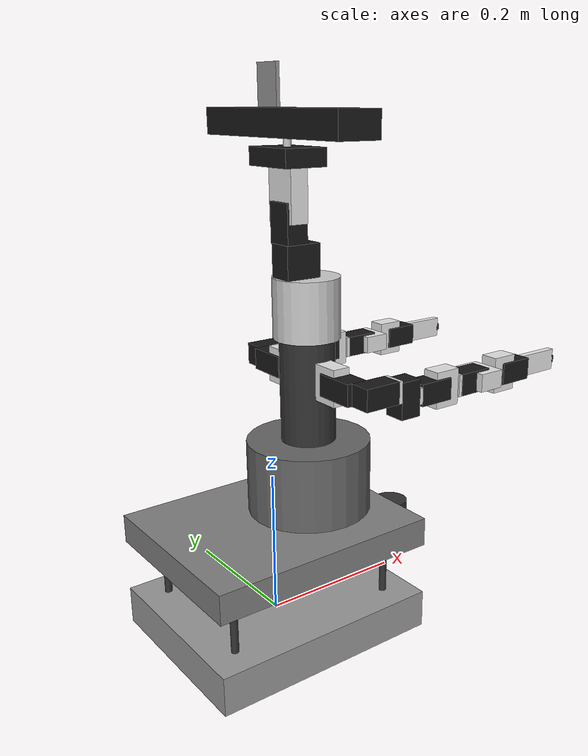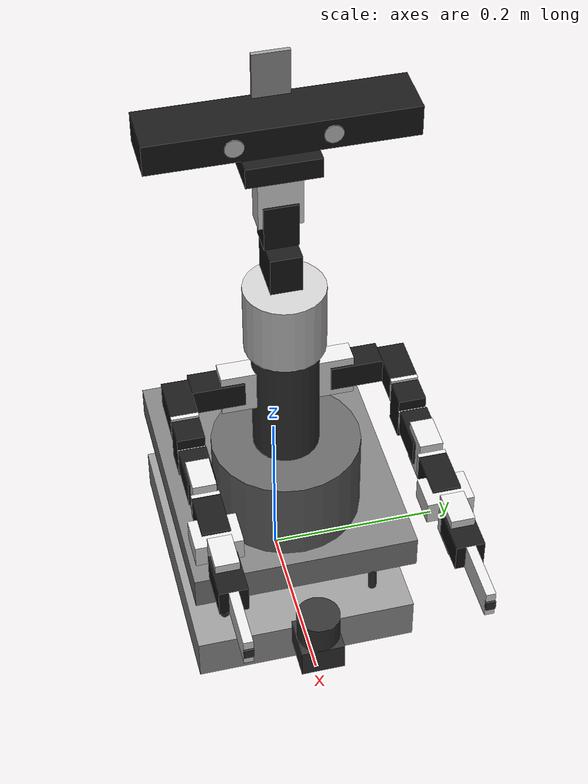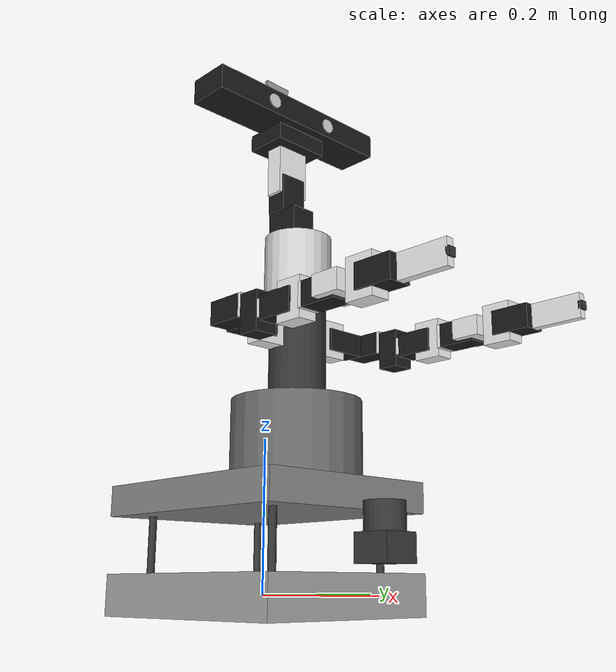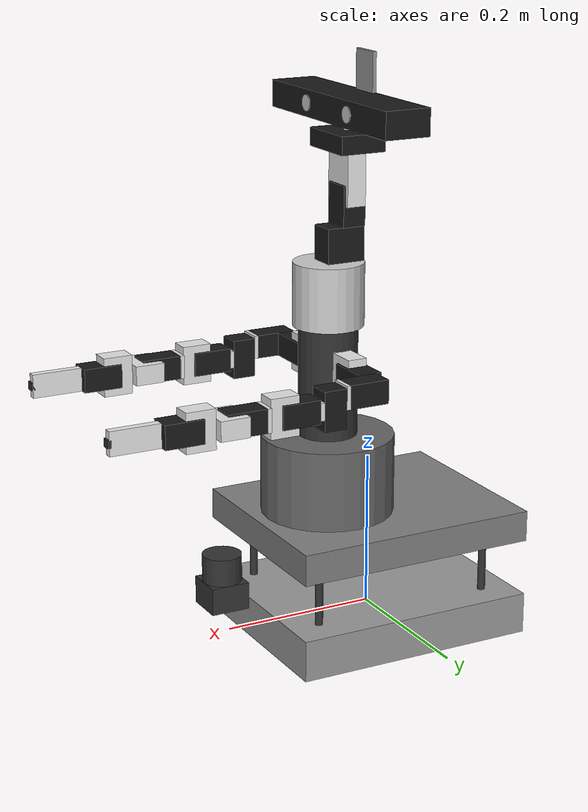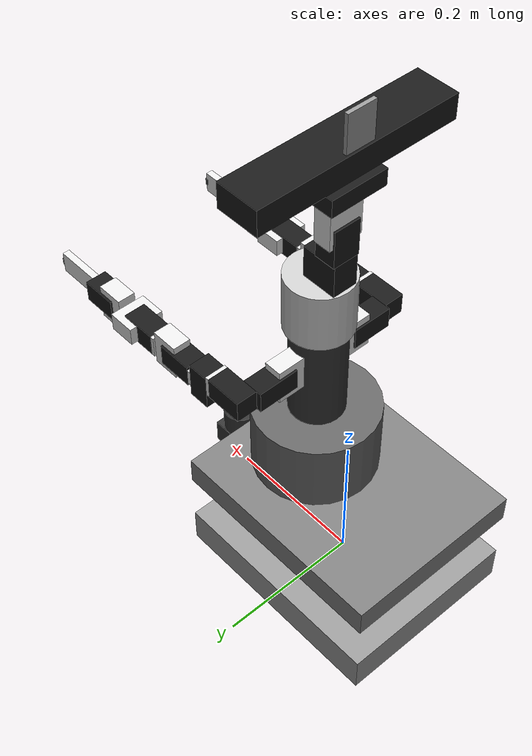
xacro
<?xml version="1.0"?>

<!-- XML namespaces -->
<robot xmlns:sensor="http://playerstage.sourceforge.net/gazebo/xmlschema/#sensor"
       xmlns:controller="http://playerstage.sourceforge.net/gazebo/xmlschema/#controller"
       xmlns:interface="http://playerstage.sourceforge.net/gazebo/xmlschema/#interface"
       xmlns:xacro="http://ros.org/wiki/xacro"
	   name="pi_robot">

    <property name="M_PI" value="3.14159"/>
    <property name="SCALE" value="0.0254"/>
    <property name="M_SCALE" value="0.001"/>

	<xacro:macro name="cyan1">
		<material name="cyan1">
			<color rgba="0 0.9 0.9 1.0"/>
		</material>
	</xacro:macro>

	<xacro:macro name="cyan2">
		<material name="cyan2">
	     <color rgba="0 0.7 0.7 1.0"/>
		</material>
	</xacro:macro>

	<xacro:macro name="cyan3">
		<material name="cyan3">
	     <color rgba="0 0.5 0.5 1.0"/>
		</material>
	</xacro:macro>

	<xacro:macro name="black">
		<material name="black">
			<color rgba="0.1 0.1 0.1 1.0"/>
		</material>
	</xacro:macro>

	<xacro:macro name="black1">
		<material name="black1">
			<color rgba="0.2 0.2 0.2 1.0"/>
		</material>
	</xacro:macro>

	<xacro:macro name="yellow2">
		<material name="yellow2">
			<color rgba="0.8 0.8 0 1.0"/>
		</material>
	</xacro:macro>

	<xacro:macro name="green1">
		<material name="green1">
			<color rgba="0 1 0 1.0"/>
		</material>
	</xacro:macro>

	<xacro:macro name="green2">
		<material name="green2">
			<color rgba="0.1 0.8 0 1.0"/>
		</material>
	</xacro:macro>

	<xacro:macro name="green3">
		<material name="green3">
			<color rgba="0.1 0.5 0.1 1.0"/>
		</material>
	</xacro:macro>

	<xacro:macro name="grey1">
		<material name="grey1">
			<color rgba="0.9 0.9 0.9 1.0"/>
		</material>
	</xacro:macro>

	<xacro:macro name="grey2">
		<material name="grey2">
			<color rgba="0.6 0.6 0.6 1.0"/>
		</material>
	</xacro:macro>

	<xacro:macro name="grey3">
		<material name="grey3">
			<color rgba="0.8 0.8 0.8 1.0"/>
		</material>
	</xacro:macro>

	<xacro:macro name="grey4">
		<material name="grey4">
			<color rgba="0.4 0.4 0.4 1.0"/>
		</material>
	</xacro:macro>

	<xacro:macro name="grey5">
		<material name="grey5">
			<color rgba="0.5 0.5 0.5 1.0"/>
		</material>
	</xacro:macro>

	<xacro:macro name="blue1">
		<material name="blue1">
			<color rgba="0 0 0.9 1.0"/>
		</material>
	</xacro:macro>

	<xacro:macro name="ax12_color">
		<material name="ax12_color">
			<color rgba="0.1 0.1 0.1 1.0"/>
		</material>
	</xacro:macro>

	<xacro:macro name="bracket_color">
		<material name="bracket_color">
			<color rgba="0.9 0.9 0.9 1.0"/>
		</material>
	</xacro:macro>

	<xacro:macro name="ax12" params="name xyz rpy">
		<link name="${name}">
			<visual>
				<origin xyz="${xyz}" rpy="${rpy}" />
				<geometry>
					<box size="0.5 0.32 0.38" />
				</geometry>
				<material name="black1">
					<color rgba="0.2 0.2 0.2 1.0"/>
				</material>
             </visual>
             <collision>
				<origin xyz="${xyz}" rpy="${rpy}" />
					<geometry>
						<box size="0.5 0.32 0.38" />
					</geometry>
             </collision>
             <xacro:default_inertial mass="0.055" />
        </link>
        <xacro:default_gazebo name="${name}" material="Gazebo/FlatBlack" />
	</xacro:macro>

	<xacro:macro name="bracket1" params="name xyz rpy">
		<link name="${name}">
			<visual>
				<origin xyz="${xyz}" rpy="${rpy}" />
				<geometry>
					<box size="0.05 0.025 0.038" />
				</geometry>
				<material name="black1">
					<color rgba="0.2 0.2 0.2 1.0"/>
				</material>
             </visual>
             <collision>
				<origin xyz="${xyz}" rpy="${rpy}" />
					<geometry>
						<box size="0.05 0.025 0.038" />
					</geometry>
             </collision>
             <xacro:default_inertial mass="0.02" />
        </link>
        <xacro:default_gazebo name="${name}" material="Gazebo/WhiteEmissive" />
	</xacro:macro>

	<xacro:macro name="my_box" params="name lwh xyz rpy mass material *rviz_color">
		<link name="${name}">
			<visual>
				<origin xyz="${xyz}" rpy="${rpy}" />
				<geometry>
					<box size="${lwh}" />
				</geometry>
			    <xacro:insert_block name="rviz_color" />
             </visual>
             <collision>
				<origin xyz="${xyz}" rpy="${rpy}" />
					<geometry>
						<box size="${lwh}" />
					</geometry>
             </collision>
             <xacro:default_inertial mass="${mass}" />
        </link>
        <xacro:default_gazebo name="${name}" material="${material}" />
	</xacro:macro>

	<xacro:macro name="my_cylinder" params="name l r xyz rpy mass material *rviz_color">
		<link name="${name}">
			<visual>
				<origin xyz="${xyz}" rpy="${rpy}" />
				<geometry>
					<cylinder length="${l}" radius="${r}" />
				</geometry>
            	<xacro:insert_block name="rviz_color" />
            </visual>
            <collision>
				<origin xyz="${xyz}" rpy="${rpy}" />
					<geometry>
						<cylinder length="${l}" radius="${r}" />
					</geometry>
            </collision>
            <xacro:default_inertial mass="${mass}" />
        </link>
        <xacro:default_gazebo name="${name}" material="${material}" />
	</xacro:macro>

    <xacro:macro name="default_inertial" params="mass">
		<inertial>
			<mass value="${mass}" />
			<inertia ixx="0.001" ixy="0.0" ixz="0.0"
                     iyy="0.001" iyz="0.0"
                     izz="0.001" />
			</inertial>
    </xacro:macro>

    <xacro:macro name="default_gazebo" params="name material">
 		<gazebo reference="${name}">
			<material>${material}</material>
			<selfCollide>false</selfCollide>
			<turnGravityOff>True</turnGravityOff>
		</gazebo>
    </xacro:macro>

 	<!-- ============================   Body   ============================ -->

	<xacro:my_box name="base_link" lwh="0.32 0.26 0.053" xyz="0 0 0" rpy="0 0 0" mass="0.5" material="Gazebo/Grey">
		<xacro:grey2 />
	</xacro:my_box>

	<xacro:my_cylinder name="base_support_1" l="0.08" r="0.005" xyz="0 0 0" rpy="0 0 0" mass="0.01" material="Gazebo/BlueTransparent">
		<xacro:black1 />
	</xacro:my_cylinder>

	<xacro:my_cylinder name="base_support_2" l="0.08" r="0.005" xyz="0 0 0" rpy="0 0 0" mass="0.01" material="Gazebo/BlueTransparent">
		<xacro:black1 />
	</xacro:my_cylinder>

	<xacro:my_cylinder name="base_support_3" l="0.08" r="0.005" xyz="0 0 0" rpy="0 0 0" mass="0.01" material="Gazebo/BlueTransparent">
		<xacro:black1 />
	</xacro:my_cylinder>

	<xacro:my_cylinder name="base_support_4" l="0.08" r="0.005" xyz="0 0 0" rpy="0 0 0" mass="0.01" material="Gazebo/BlueTransparent">
		<xacro:black1 />
	</xacro:my_cylinder>

	<xacro:my_box name="base_laser_bottom" lwh="0.05 0.05 0.035" xyz="0 0 0" rpy="0 0 0" mass="0.1" material="Gazebo/FlatBlack">
		<xacro:black1 />
	</xacro:my_box>

	<xacro:my_cylinder name="base_laser" l="0.035" r="0.025" xyz="0 0 0" rpy="0 0 0" mass="0.1" material="Gazebo/Grey">
		<xacro:black1 />
	</xacro:my_cylinder>

 	<xacro:my_box name="cpu_link" lwh="0.32 0.26 0.040" xyz="0 0 0" rpy="0 0 0" mass="0.5" material="Gazebo/FlatBlack">
		<xacro:grey5 />
	</xacro:my_box>

	<xacro:my_cylinder name="upper_base_link" l="0.102" r="0.085" xyz="0 0 0" rpy="0 0 0" mass="0.25" material="Gazebo/BlueTransparent">
		<xacro:grey4 />
	</xacro:my_cylinder>

	<xacro:my_cylinder name="lower_torso_link" l="0.142" r="0.0375" xyz="0 0 0" rpy="0 0 0" mass="0.12" material="Gazebo/WhiteEmissive">
		<xacro:black1/>
	</xacro:my_cylinder>

	<xacro:my_cylinder name="upper_torso_link" l="0.081" r="0.045" xyz="0 0 0" rpy="0 0 0" mass="0.12" material="Gazebo/BlueTransparent">
		<xacro:grey3 />
	</xacro:my_cylinder>

	<xacro:my_box name="head_pan_link" lwh="0.05 0.035 0.044" xyz="0 0 0" rpy="0 0 0" mass="0.055" material="Gazebo/FlatBlack">
		<xacro:ax12_color />
	</xacro:my_box>

	<xacro:my_box name="head_tilt_link" lwh="0.03 0.038 0.052" xyz="0 0 0" rpy="0 0 0" mass="0.055" material="Gazebo/FlatBlack">
		<xacro:ax12_color />
	</xacro:my_box>

	<xacro:my_box name="neck_link" lwh="0.025 0.048 0.068" xyz="0 0 0.02" rpy="0 0 0" mass="0.05" material="Gazebo/WhiteEmissive">
		<xacro:bracket_color />
	</xacro:my_box>

	<xacro:my_box name="head_base_link" lwh="0.06 0.08 0.023" xyz="0 0 00" rpy="0 0 0" mass="0.1" material="Gazebo/FlatBlack">
		<xacro:black />
	</xacro:my_box>

	<xacro:my_cylinder name="head_post_link" l="0.012" r="0.005" xyz="0 0 00" rpy="0 0 0" mass="0.1" material="Gazebo/WhiteEmissive">
		<xacro:grey3 />
	</xacro:my_cylinder>

	<xacro:my_box name="kinect_link" lwh="0.06 0.282 0.034" xyz="0 0 0" rpy="0 0 0" mass="0.8" material="Gazebo/FlatBlack">
		<xacro:black />
	</xacro:my_box>

	<joint name="kinect_depth_joint" type="fixed">
	  <origin xyz="0 0.018 0" rpy="0 0 0" />
	  <parent link="kinect_link" />
	  <child link="kinect_depth_frame" />
	</joint>

	<link name="kinect_depth_frame">
	  <inertial>
	    <mass value="0.0001" />
	    <origin xyz="0 0 0" />
	    <inertia ixx="0.0001" ixy="0.0" ixz="0.0"
	             iyy="0.0001" iyz="0.0"
	             izz="0.0001" />
	  </inertial>
	</link>

	<joint name="kinect_depth_optical_joint" type="fixed">
	  <origin xyz="0 0 0" rpy="${-M_PI/2} ${M_PI} ${-M_PI/2}" />
	  <parent link="kinect_depth_frame" />
	  <child link="kinect_depth_optical_frame" />
	</joint>

	<link name="kinect_depth_optical_frame">
	  <inertial>
	    <mass value="0.0001" />
	    <origin xyz="0 0 0" />
	    <inertia ixx="0.0001" ixy="0.0" ixz="0.0"
	             iyy="0.0001" iyz="0.0"
	             izz="0.0001" />
	  </inertial>
	</link>

	<joint name="kinect_rgb_joint" type="fixed">
	  <origin xyz="0 -0.005 0" rpy="0 0 0" />
	  <parent link="kinect_link" />
	  <child link="kinect_rgb_frame" />
	</joint>

	<link name="kinect_rgb_frame">
	  <inertial>
	    <mass value="0.0001" />
	    <origin xyz="0 0 0" />
	    <inertia ixx="0.0001" ixy="0.0" ixz="0.0"
	             iyy="0.0001" iyz="0.0"
	             izz="0.0001" />
	  </inertial>
	</link>

	<joint name="kinect_rgb_optical_joint" type="fixed">
	  <origin xyz="0 0 0" rpy="${-M_PI/2} 0 ${-M_PI/2}" />
	  <parent link="kinect_rgb_frame" />
	  <child link="kinect_rgb_optical_frame" />
	</joint>

	<link name="kinect_rgb_optical_frame">
	  <inertial>
	    <mass value="0.0001" />
	    <origin xyz="0 0 0" />
	    <inertia ixx="0.0001" ixy="0.0" ixz="0.0"
	             iyy="0.0001" iyz="0.0"
	             izz="0.0001" />
	  </inertial>
	</link>

	<xacro:my_cylinder name="left_eye_link" l="0.01" r="0.01" xyz="0 0 0" rpy="0 1.57 0" mass="0.001" material="Gazebo/WhiteEmissive">
		<xacro:grey3 />
	</xacro:my_cylinder>

	<xacro:my_cylinder name="right_eye_link" l="0.01" r="0.01" xyz="0 0 00" rpy="0 1.57 0" mass="0.001" material="Gazebo/WhiteEmissive">
		<xacro:grey3 />
	</xacro:my_cylinder>

	<xacro:my_box name="hair_link" lwh="0.005 0.04 0.05" xyz="0 0 0" rpy="0 0 0" mass="0.05" material="Gazebo/WhiteEmissive">
		<xacro:grey2 />
	</xacro:my_box>

 	<!-- ============================   Arms   ============================ -->

	<xacro:macro name="arm" params="side reflect">

		<xacro:my_box name="${side}_shoulder_link" lwh="0.025 0.04 0.05" xyz="0 ${reflect*0.02} 0" rpy="0 0 0" mass="0.05" material="Gazebo/WhiteEmissive">
			<xacro:bracket_color />
		</xacro:my_box>

		<xacro:my_box name="${side}_shoulder_pan_link" lwh="0.03 0.058 0.03" xyz="0 ${reflect*0.012} 0" rpy="0 0 0" mass="0.055" material="Gazebo/FlatBlack">
			<xacro:ax12_color />
		</xacro:my_box>

		<xacro:my_box name="${side}_shoulder_lift_link" lwh="0.03 0.03 0.052" xyz="0 ${reflect*0.009} -0.018" rpy="0 0 0" mass="0.055" material="Gazebo/FlatBlack">
			<xacro:ax12_color />
		</xacro:my_box>

		<xacro:my_box name="${side}_upper_arm_bracket_link" lwh="0.03 0.03 0.005" xyz="0 0 0" rpy="0 0 0" mass="0.02" material="Gazebo/WhiteEmissive">
			<xacro:bracket_color />
		</xacro:my_box>

		<xacro:my_box name="${side}_arm_roll_link" lwh="0.05 0.03 0.03" xyz="-0.013 ${reflect*0.009} 0" rpy="0 0 0" mass="0.055" material="Gazebo/FlatBlack">
			<xacro:ax12_color />
		</xacro:my_box>

		<xacro:my_box name="${side}_upper_elbow_bracket_link" lwh="0.03 0.022 0.005" xyz="0 0 0" rpy="0 0 0" mass="0.02" material="Gazebo/WhiteEmissive">
			<xacro:bracket_color />
		</xacro:my_box>

		<xacro:my_box name="${side}_elbow_servo_link" lwh="0.03 0.03 0.05" xyz="0 0 0" rpy="0 0 0" mass="0.055" material="Gazebo/FlatBlack">
			<xacro:ax12_color />
		</xacro:my_box>

		<xacro:my_box name="${side}_elbow_link" lwh="0.05 0.025 0.038" xyz="0 0 -0.021" rpy="0 0 0" mass="0.05" material="Gazebo/WhiteEmissive">
			<xacro:bracket_color />
		</xacro:my_box>

		<xacro:my_box name="${side}_forearm_bracket_link" lwh="0.03 0.03 0.005" xyz="0 0 0" rpy="0 0 0" mass="0.02" material="Gazebo/WhiteEmissive">
			<xacro:bracket_color />
		</xacro:my_box>

		<xacro:my_box name="${side}_forearm_servo_link" lwh="0.03 0.03 0.05" xyz="0 0 0" rpy="0 0 0" mass="0.055" material="Gazebo/FlatBlack">
			<xacro:ax12_color />
		</xacro:my_box>

		<xacro:my_box name="${side}_forearm_link" lwh="0.05 0.025 0.038" xyz="0 0 -0.021" rpy="0 0 1.57" mass="0.02" material="Gazebo/WhiteEmissive">
			<xacro:bracket_color />
		</xacro:my_box>

		<xacro:my_box name="${side}_wrist_bracket_link" lwh="0.05 0.025 0.038" xyz="0 0 -0.021" rpy="0 0 0" mass="0.02" material="Gazebo/WhiteEmissive">
			<xacro:bracket_color />
		</xacro:my_box>

		<xacro:my_box name="${side}_wrist_link" lwh="0.03 0.03 0.05" xyz="0 0 -0.016" rpy="0 0 0" mass="0.055" material="Gazebo/FlatBlack">
			<xacro:ax12_color />
		</xacro:my_box>

		<xacro:my_box name="${side}_hand_link" lwh="0.03 0.01 0.064" xyz="0 0 -0.032" rpy="0 0 0" mass="0.1" material="Gazebo/WhiteEmissive">
			<xacro:grey1 />
		</xacro:my_box>

		<xacro:my_box name="${side}_finger_link" lwh="0.01 0.01 0.005" xyz="0 0 0" rpy="0 0 0" mass="0.001" material="Gazebo/WhiteEmissive">
			<xacro:black1 />
		</xacro:my_box>
	</xacro:macro>

	<xacro:arm side="left" reflect="1" />
	<xacro:arm side="right" reflect="-1" />

	<!-- =================== Joint Definitions ==================== -->

	<joint name="base_support_1_joint" type="fixed">
    	<parent link="base_link" />
    	<child link="base_support_1" />
    	<origin xyz="0.12 0.09 0.06" rpy="0 0 0" />
	</joint>

	<joint name="base_support_2_joint" type="fixed">
    	<parent link="base_link" />
    	<child link="base_support_2" />
    	<origin xyz="0.12 -0.09 0.06" rpy="0 0 0" />
	</joint>

	<joint name="base_support_3_joint" type="fixed">
    	<parent link="base_link" />
    	<child link="base_support_3" />
    	<origin xyz="-0.12 0.09 0.06" rpy="0 0 0" />
	</joint>

	<joint name="base_support_4_joint" type="fixed">
    	<parent link="base_link" />
    	<child link="base_support_4" />
    	<origin xyz="-0.12 -0.09 0.06" rpy="0 0 0" />
	</joint>

	<joint name="cpu_joint" type="fixed">
    	<parent link="base_link" />
    	<child link="cpu_link" />
    	<origin xyz="0 0 0.12" rpy="0 0 0" />
	</joint>

	<joint name="base_laser_bottom_joint" type="fixed">
    	<parent link="base_link" />
    	<child link="base_laser_bottom" />
    	<origin xyz="0.21 0 0.053" rpy="0 0 0" />
	</joint>

	<joint name="base_laser_joint" type="fixed">
    	<parent link="base_laser_bottom" />
    	<child link="base_laser" />
    	<origin xyz="0 0 0.035" rpy="0 0 0" />
	</joint>

	<joint name="upper_base_joint" type="fixed">
    	<parent link="cpu_link" />
    	<child link="upper_base_link" />
    	<origin xyz="0.06 0 0.071" rpy="0 0 0" />
	</joint>

	<joint name="torso_joint" type="revolute">
    	<parent link="upper_base_link" />
    	<child link="lower_torso_link" />
    	<origin xyz="0 0 0.122" rpy="0 0 0" />
    	<axis xyz="0 0 1" />
    	<limit lower="-3.1416" upper="3.1416" effort="10" velocity="3" />
      	<dynamics damping="0.0"/>
	</joint>

	<joint name="upper_torso_joint" type="fixed">
    	<parent link="lower_torso_link" />
    	<child link="upper_torso_link" />
    	<origin xyz="0 0 0.1115" rpy="0 0 0" />
	</joint>

	<joint name="head_pan_servo" type="fixed">
    	<parent link="upper_torso_link" />
    	<child link="head_pan_link" />
    	<origin xyz="-0.015 0 0.0625" rpy="0 0 0" />
	</joint>

	<joint name="head_pan_joint" type="revolute">
    	<parent link="head_pan_link" />
    	<child link="head_tilt_link" />
    	<origin xyz="-0.01 0 0.048" rpy="0 0 0" />
    	<axis xyz="0 0 1" />
    	<limit lower="-3.1416" upper="3.1416" effort="10" velocity="3" />
      	<dynamics damping="0.0"/>
	</joint>

 	<joint name="head_tilt_joint" type="revolute">
    	<parent link="head_tilt_link" />
    	<child link="neck_link" />
    	<origin xyz="0 0 0.014" rpy="0 0 0" />
    	<axis xyz="0 1 0" />
    	<limit lower="-1.57" upper="1.57" effort="10" velocity="3" />
      	<dynamics damping="0.0"/>
	</joint>

 	<joint name="neck_joint" type="fixed">
    	<parent link="neck_link" />
    	<child link="head_base_link" />
    	<origin xyz="0 0 0.0655" rpy="0 0 0" />
	</joint>

	<joint name="head_base_joint" type="fixed">
    	<parent link="head_base_link" />
    	<child link="head_post_link" />
    	<origin xyz="0 0 0.016" rpy="0 0 0" />
	</joint>

	<joint name="head_joint" type="fixed">
    	<parent link="head_post_link" />
    	<child link="kinect_link" />
    	<origin xyz="0 0 0.0235" rpy="0 0 0" />
	</joint>

	<joint name="left_eye_joint" type="fixed">
    	<parent link="kinect_link" />
    	<child link="left_eye_link" />
    	<origin xyz="0.026 0.05 0" rpy="0 0 0" />
	</joint>

	<joint name="right_eye_joint" type="fixed">
    	<parent link="kinect_link" />
    	<child link="right_eye_link" />
    	<origin xyz="0.026 -0.05 0" rpy="0 0 0" />
	</joint>

	<joint name="hair_joint" type="fixed">
    	<parent link="kinect_link" />
    	<child link="hair_link" />
    	<origin xyz="-0.025 0 0.0425" rpy="0 0 0" />
	</joint>

 	<joint name="left_shoulder_joint" type="fixed">
    	<parent link="lower_torso_link" />
    	<child link="left_shoulder_link" />
    	<origin xyz="0 0.034 0.02" rpy="0 0 0" />
	</joint>

 	<joint name="left_shoulder_pan_joint" type="revolute">
    	<parent link="left_shoulder_link" />
    	<child link="left_shoulder_pan_link" />
    	<origin xyz="0 0.031 0" rpy="0 0 0" />
       	<limit lower="-3.14" upper="3.14" effort="10" velocity="3" />
        <axis xyz="0 0 1" />
    	<dynamics damping="0.0"/>
	</joint>

 	<joint name="left_shoulder_lift_joint" type="revolute">
    	<parent link="left_shoulder_pan_link" />
    	<child link="left_shoulder_lift_link" />
    	<origin xyz="0 0.047 0" rpy="0 -1.57 0" />
       	<limit lower="-3.14" upper="3.14" effort="10" velocity="3" />
        <axis xyz="0 1 0" />
    	<dynamics damping="0.0"/>
	</joint>

 	<joint name="left_upper_arm_bracket_joint" type="fixed">
    	<parent link="left_shoulder_lift_link" />
    	<child link="left_upper_arm_bracket_link" />
    	<origin xyz="0 0.009 -0.0465" rpy="0 0 0" />
	</joint>

 	<joint name="left_arm_roll_joint" type="revolute">
    	<parent link="left_upper_arm_bracket_link" />
    	<child link="left_arm_roll_link" />
        <limit lower="-3.14" upper="3.14" effort="10" velocity="3" />
    	<origin xyz="0 -0.009 -0.0175" rpy="0 0 0" />
        <axis xyz="0 0 -1" />
    	<dynamics damping="0.0"/>
	</joint>

 	<joint name="left_upper_elbow_bracket_joint" type="fixed">
    	<parent link="left_arm_roll_link" />
    	<child link="left_upper_elbow_bracket_link" />
    	<origin xyz="-0.012 0.009 -0.0175" rpy="0 0 -1.57" />
    	<dynamics damping="0.0"/>
	</joint>

 	<joint name="left_elbow_servo_joint" type="fixed">
    	<parent link="left_upper_elbow_bracket_link" />
    	<child link="left_elbow_servo_link" />
    	<origin xyz="0 0 -0.0275" rpy="0 0 1.57" />
        <axis xyz="0 1 0" />
	</joint>

 	<joint name="left_elbow_joint" type="revolute">
    	<parent link="left_elbow_servo_link" />
    	<child link="left_elbow_link" />
    	<origin xyz="0 0 0" rpy="0 0 0" />
        <limit lower="-3.14" upper="3.14" effort="10" velocity="3" />
        <axis xyz="1 0 0" />
    	<dynamics damping="0.0"/>
	</joint>

 	<joint name="left_forearm_bracket_joint" type="fixed">
    	<parent link="left_elbow_link" />
    	<child link="left_forearm_bracket_link" />
    	<origin xyz="0 0 -0.0425" rpy="0 0 0" />
	</joint>

 	<joint name="left_forearm_servo_joint" type="fixed">
    	<parent link="left_forearm_bracket_link" />
    	<child link="left_forearm_servo_link" />
    	<origin xyz="0 0 -0.028" rpy="0 0 0" />
	</joint>

 	<joint name="left_forearm_joint" type="revolute">
    	<parent link="left_forearm_servo_link" />
    	<child link="left_forearm_link" />
    	<origin xyz="0 0 0" rpy="0 0 0" />
       	<limit lower="-3.14" upper="3.14" effort="10" velocity="3" />
        <axis xyz="0 1 0" />
    	<dynamics damping="0.0"/>
	</joint>

 	<joint name="left_wrist_bracket_joint" type="fixed">
    	<parent link="left_forearm_link" />
    	<child link="left_wrist_bracket_link" />
    	<origin xyz="0 0 -0.038" rpy="0 0 0" />
    	<dynamics damping="0.0"/>
	</joint>

 	<joint name="left_wrist_joint" type="revolute">
    	<parent link="left_wrist_bracket_link" />
    	<child link="left_wrist_link" />
    	<origin xyz="0 0 -0.026" rpy="0 0 0" />
       	<limit lower="-3.14" upper="3.14" effort="10" velocity="3" />
        <axis xyz="-1 0 0" />
    	<dynamics damping="0.0"/>
	</joint>

 	<joint name="left_hand_joint" type="fixed">
    	<parent link="left_wrist_link" />
    	<child link="left_hand_link" />
    	<origin xyz="0 0 -0.041" rpy="0 0 0" />
	</joint>

 	<joint name="left_finger_joint" type="fixed">
    	<parent link="left_hand_link" />
    	<child link="left_finger_link" />
    	<origin xyz="0 0 -0.064" rpy="0 0 0" />
    	<dynamics damping="0.0"/>
	</joint>

 	<joint name="right_shoulder_joint" type="fixed">
    	<parent link="lower_torso_link" />
    	<child link="right_shoulder_link" />
    	<origin xyz="0 -0.034 0.02" rpy="0 0 0" />
	</joint>

 	<joint name="right_shoulder_pan_joint" type="revolute">
    	<parent link="right_shoulder_link" />
    	<child link="right_shoulder_pan_link" />
    	<origin xyz="0 -0.031 0" rpy="0 0 0" />
       	<limit lower="-3.14" upper="3.14" effort="10" velocity="3" />
        <axis xyz="0 0 1" />
    	<dynamics damping="0.0"/>
	</joint>

 	<joint name="right_shoulder_lift_joint" type="revolute">
    	<parent link="right_shoulder_pan_link" />
    	<child link="right_shoulder_lift_link" />
    	<origin xyz="0 -0.047 0" rpy="0 -1.57 0" />
       	<limit lower="-3.14" upper="3.14" effort="10" velocity="3" />
        <axis xyz="0 -1 0" />
    	<dynamics damping="0.0"/>
	</joint>

 	<joint name="right_upper_arm_bracket_joint" type="fixed">
    	<parent link="right_shoulder_lift_link" />
    	<child link="right_upper_arm_bracket_link" />
    	<origin xyz="0 -0.009 -0.0465" rpy="0 0 0" />
	</joint>

 	<joint name="right_arm_roll_joint" type="revolute">
    	<parent link="right_upper_arm_bracket_link" />
    	<child link="right_arm_roll_link" />
        <limit lower="-3.14" upper="3.14" effort="10" velocity="3" />
    	<origin xyz="0 0.009 -0.0175" rpy="0 0 0" />
        <axis xyz="0 0 -1" />
    	<dynamics damping="0.0"/>
	</joint>

 	<joint name="right_upper_elbow_bracket_joint" type="fixed">
    	<parent link="right_arm_roll_link" />
    	<child link="right_upper_elbow_bracket_link" />
    	<origin xyz="-0.012 -0.009 -0.0175" rpy="0 0 -1.57" />
    	<dynamics damping="0.0"/>
	</joint>

 	<joint name="right_elbow_servo_joint" type="fixed">
    	<parent link="right_upper_elbow_bracket_link" />
    	<child link="right_elbow_servo_link" />
    	<origin xyz="0 0 -0.0275" rpy="0 0 1.57" />
        <axis xyz="0 -1 0" />
	</joint>

 	<joint name="right_elbow_joint" type="revolute">
    	<parent link="right_elbow_servo_link" />
    	<child link="right_elbow_link" />
    	<origin xyz="0 0 0" rpy="0 0 0" />
       	<limit lower="-3.14" upper="3.14" effort="10" velocity="3" />
        <axis xyz="1 0 0" />
    	<dynamics damping="0.0"/>
	</joint>

 	<joint name="right_forearm_bracket_joint" type="fixed">
    	<parent link="right_elbow_link" />
    	<child link="right_forearm_bracket_link" />
    	<origin xyz="0 0 -0.0425" rpy="0 0 0" />
	</joint>

 	<joint name="right_forearm_servo_joint" type="fixed">
    	<parent link="right_forearm_bracket_link" />
    	<child link="right_forearm_servo_link" />
    	<origin xyz="0 0 -0.028" rpy="0 0 0" />
	</joint>

 	<joint name="right_forearm_joint" type="revolute">
    	<parent link="right_forearm_servo_link" />
    	<child link="right_forearm_link" />
    	<origin xyz="0 0 0" rpy="0 0 0" />
       	<limit lower="-3.14" upper="3.14" effort="10" velocity="3" />
        <axis xyz="0 1 0" />
    	<dynamics damping="0.0"/>
	</joint>

 	<joint name="right_wrist_bracket_joint" type="fixed">
    	<parent link="right_forearm_link" />
    	<child link="right_wrist_bracket_link" />
    	<origin xyz="0 0 -0.038" rpy="0 0 0" />
    	<dynamics damping="0.0"/>
	</joint>

 	<joint name="right_wrist_joint" type="revolute">
    	<parent link="right_wrist_bracket_link" />
    	<child link="right_wrist_link" />
    	<origin xyz="0 0 -0.026" rpy="0 0 0" />
       	<limit lower="-3.14" upper="3.14" effort="10" velocity="3" />
        <axis xyz="-1 0 0" />
    	<dynamics damping="0.0"/>
	</joint>

 	<joint name="right_hand_joint" type="fixed">
    	<parent link="right_wrist_link" />
    	<child link="right_hand_link" />
    	<origin xyz="0 0 -0.041" rpy="0 0 0" />
	</joint>

 	<joint name="right_finger_joint" type="fixed">
    	<parent link="right_hand_link" />
    	<child link="right_finger_link" />
    	<origin xyz="0 0 -0.064" rpy="0 0 0" />
	</joint>

	<gazebo reference="pi_robot">
  	</gazebo>
</robot>
